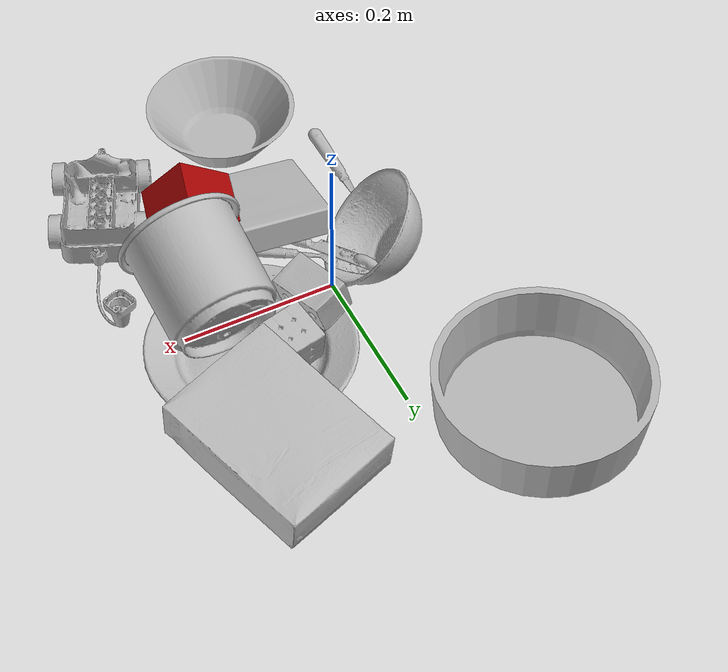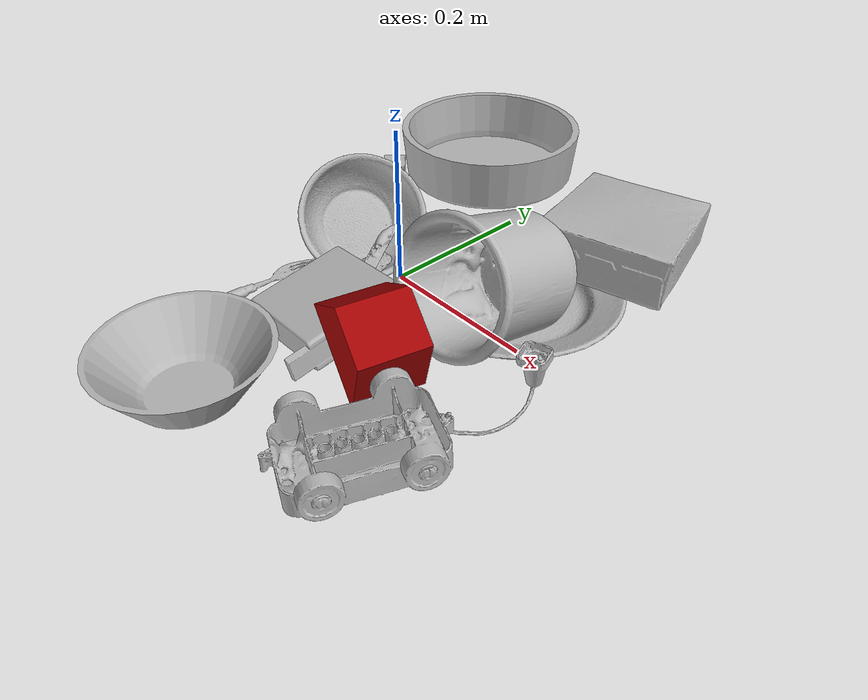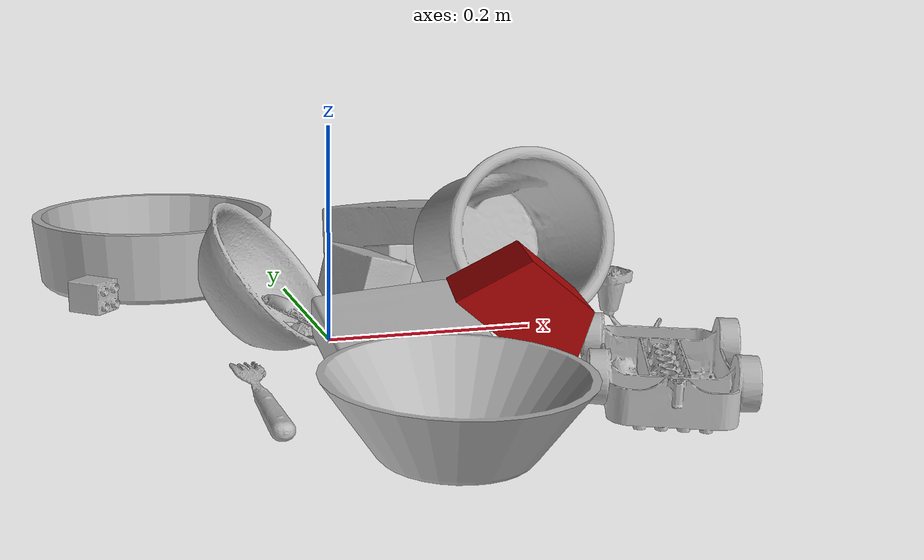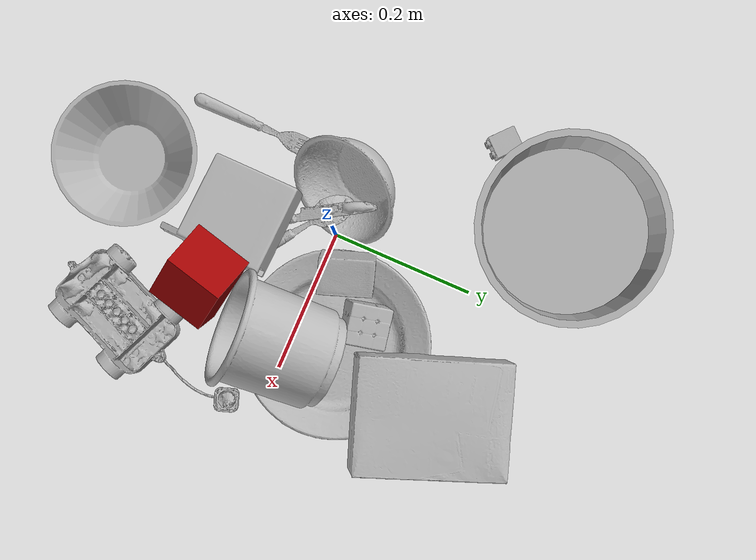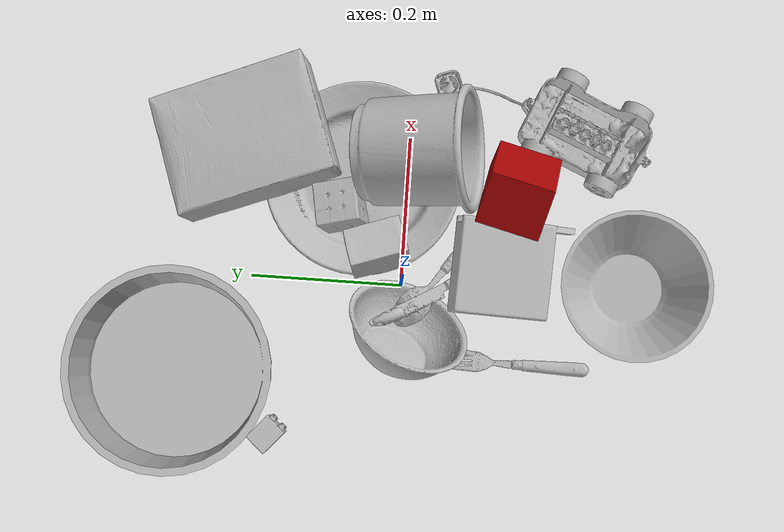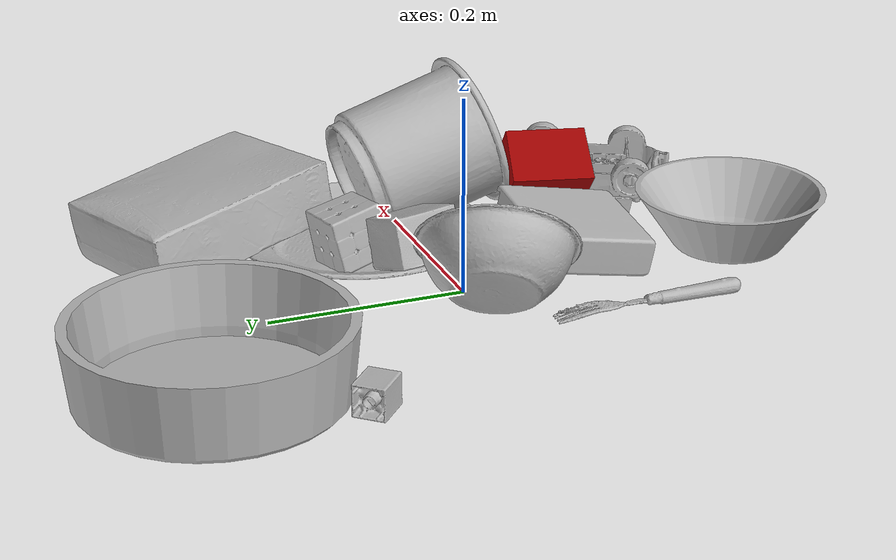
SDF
<sdf version="1.4">
  <world name="default">
    <light name="light1" type="point">
      <pose>0 0 1 0 0 0</pose>
      <diffuse>3 3 3 1</diffuse>
      <specular>3 3 3 1</specular>
    </light>
    <light name="light2" type="point">
      <pose>0 0.5 2 0 0 0</pose>
      <diffuse>1 1 1 1</diffuse>
      <specular>1 1 1 1</specular>
    </light>
    <light name="light3" type="point">
      <pose>0 0.5 2 0 0 0</pose>
      <diffuse>3 3 3 1</diffuse>
      <specular>3 3 3 1</specular>
    </light>
    <scene>
      <ambient>0.7 0.7 0.7</ambient>
    </scene>
    <model name="plate1">
      <link name="link_plate1">
        <collision name="default">
          <geometry>
            <mesh>
              <uri>model://pan_tefal/collision_meshes/collision.obj</uri>
              <scale>1.0 1.0 1.0</scale>
            </mesh>
          </geometry>
          <surface>
            <friction>
              <ode>
                <mu>0.5</mu>
                <mu2>0.5</mu2>
              </ode>
            </friction>
          <contact>
        <ode>
            <max_vel>0</max_vel>
            <min_depth>0.0001</min_depth>
            <kp>1e8</kp>
        </ode>
    </contact></surface>
        </collision>
        <visual name="default">
          <geometry>
            <mesh>
              <uri>model://pan_tefal/visual_meshes/visual.dae</uri>
              <scale>1.0 1.0 1.0</scale>
            </mesh>
          </geometry>
        </visual>
        <inertial>
          <mass>0.7575002908706665</mass>
          <pose>-0.00018002181604970247 3.278869189671241e-05 -0.00851493701338768 0.0008190213215647545 -0.0003301469994364688 -0.3318472895374236</pose>
          <inertia>
            <ixx>0.0052289874</ixx>
            <iyy>0.0052627004</iyy>
            <izz>0.009625561</izz>
            <ixy>0</ixy>
            <ixz>0</ixz>
            <iyz>0</iyz>
          </inertia>
        </inertial>
      </link>
      <pose>-0.1304413229227066 0.2881738245487213 0.03804999589920044 2.0851112926545404e-08 1.8092326676823667e-08 0.8821086328146249</pose>
    </model>
    <model name="plate2">
      <link name="link_plate2">
        <collision name="default">
          <geometry>
            <mesh>
              <uri>model://plate/collision_meshes/collision.obj</uri>
              <scale>1.0 1.0 1.0</scale>
            </mesh>
          </geometry>
          <surface>
            <friction>
              <ode>
                <mu>0.5</mu>
                <mu2>0.5</mu2>
              </ode>
            </friction>
          <contact>
        <ode>
            <max_vel>0</max_vel>
            <min_depth>0.0001</min_depth>
            <kp>1e8</kp>
        </ode>
    </contact></surface>
        </collision>
        <visual name="default">
          <geometry>
            <mesh>
              <uri>model://plate/visual_meshes/visual.dae</uri>
              <scale>1.0 1.0 1.0</scale>
            </mesh>
          </geometry>
        </visual>
        <inertial>
          <mass>0.24305373430252075</mass>
          <pose>-0.0006044657784514129 0.0002782582014333457 -0.0010561988456174731 0.0022187349237576767 -0.0032255124479001144 0.4526250186623527</pose>
          <inertia>
            <ixx>0.00113701</ixx>
            <iyy>0.0011261352</iyy>
            <izz>0.0022238225</izz>
            <ixy>0</ixy>
            <ixz>0</ixz>
            <iyz>0</iyz>
          </inertia>
        </inertial>
      </link>
      <pose>0.13806992769241333 0.06045273691415787 0.014425480738282204 -0.00813857621468201 0.002906715036090719 -0.08678406420772596</pose>
    </model>
    <model name="bowl1">
      <link name="link_bowl1">
        <collision name="default">
          <geometry>
            <mesh>
              <uri>model://bowl/collision_meshes/collision.obj</uri>
              <scale>1.0 1.0 1.0</scale>
            </mesh>
          </geometry>
          <surface>
            <friction>
              <ode>
                <mu>0.5</mu>
                <mu2>0.5</mu2>
              </ode>
            </friction>
          <contact>
        <ode>
            <max_vel>0</max_vel>
            <min_depth>0.0001</min_depth>
            <kp>1e8</kp>
        </ode>
    </contact></surface>
        </collision>
        <visual name="default">
          <geometry>
            <mesh>
              <uri>model://bowl/visual_meshes/visual.dae</uri>
              <scale>1.0 1.0 1.0</scale>
            </mesh>
          </geometry>
        </visual>
        <inertial>
          <mass>0.08028676360845566</mass>
          <pose>0.00020445045083761215 -0.0010302026057615876 -0.0008042661938816309 -0.015764207515600946 0.014546645366850262 0.7140316236369888</pose>
          <inertia>
            <ixx>0.00018442512</ixx>
            <iyy>0.00018030431</iyy>
            <izz>0.0003102665</izz>
            <ixy>0</ixy>
            <ixz>0</ixz>
            <iyz>0</iyz>
          </inertia>
        </inertial>
      </link>
      <pose>-0.07110293954610825 -0.004874961916357279 0.05390218645334244 0.6290564403027722 0.6496264163660396 0.4364270388387509</pose>
    </model>
    <model name="bowl2">
      <link name="link_bowl2">
        <collision name="default">
          <geometry>
            <mesh>
              <uri>model://bowl_a/collision_meshes/collision.obj</uri>
              <scale>1.0 1.0 1.0</scale>
            </mesh>
          </geometry>
          <surface>
            <friction>
              <ode>
                <mu>0.5</mu>
                <mu2>0.5</mu2>
              </ode>
            </friction>
          <contact>
        <ode>
            <max_vel>0</max_vel>
            <min_depth>0.0001</min_depth>
            <kp>1e8</kp>
        </ode>
    </contact></surface>
        </collision>
        <visual name="default">
          <geometry>
            <mesh>
              <uri>model://bowl_a/visual_meshes/visual.dae</uri>
              <scale>1.0 1.0 1.0</scale>
            </mesh>
          </geometry>
        </visual>
        <inertial>
          <mass>0.2016693353652954</mass>
          <pose>0.000278673687716946 4.731108856503852e-05 -0.0013765295734629035 -0.0009805301894988984 -0.0010938186520021772 -0.19123883274053055</pose>
          <inertia>
            <ixx>0.00057416206</ixx>
            <iyy>0.000577687</iyy>
            <izz>0.0010211696</izz>
            <ixy>0</ixy>
            <ixz>0</ixz>
            <iyz>0</iyz>
          </inertia>
        </inertial>
      </link>
      <pose>0.01576288789510727 -0.3011975586414337 0.030382931232452393 -1.3751448822608147e-06 -1.4991183352546134e-07 -2.5344381073162032</pose>
    </model>
    <model name="silverware1">
      <link name="link_silverware1">
        <collision name="default">
          <geometry>
            <mesh>
              <uri>model://spoon/collision_meshes/collision.obj</uri>
              <scale>1.0 1.0 1.0</scale>
            </mesh>
          </geometry>
          <surface>
            <friction>
              <ode>
                <mu>0.5</mu>
                <mu2>0.5</mu2>
              </ode>
            </friction>
          <contact>
        <ode>
            <max_vel>0</max_vel>
            <min_depth>0.0001</min_depth>
            <kp>1e8</kp>
        </ode>
    </contact></surface>
        </collision>
        <visual name="default">
          <geometry>
            <mesh>
              <uri>model://spoon/visual_meshes/visual.dae</uri>
              <scale>1.0 1.0 1.0</scale>
            </mesh>
          </geometry>
        </visual>
        <inertial>
          <mass>0.023438503965735435</mass>
          <pose>-0.005526317749172449 -0.0016034176805987954 -0.000727164966519922 0.03521671071703309 -0.03906584129558259 0.006150610048623938</pose>
          <inertia>
            <ixx>1.3036873e-06</ixx>
            <iyy>8.918272e-05</iyy>
            <izz>8.982564e-05</izz>
            <ixy>0</ixy>
            <ixz>0</ixz>
            <iyz>0</iyz>
          </inertia>
        </inertial>
      </link>
      <pose>0.025355197489261627 -0.0547603964805603 0.013312671333551407 2.965698022376732 -0.08779902583521307 2.4998010314278405</pose>
    </model>
    <model name="box1">
      <link name="link_box1">
        <collision name="default">
          <geometry>
            <mesh>
              <uri>model://cracker_box/collision_meshes/collision.obj</uri>
              <scale>1.0 1.0 1.0</scale>
            </mesh>
          </geometry>
          <surface>
            <friction>
              <ode>
                <mu>0.5</mu>
                <mu2>0.5</mu2>
              </ode>
            </friction>
          <contact>
        <ode>
            <max_vel>0</max_vel>
            <min_depth>0.0001</min_depth>
            <kp>1e8</kp>
        </ode>
    </contact></surface>
        </collision>
        <visual name="default">
          <geometry>
            <mesh>
              <uri>model://cracker_box/visual_meshes/visual.dae</uri>
              <scale>1.0 1.0 1.0</scale>
            </mesh>
          </geometry>
        </visual>
        <inertial>
          <mass>3.1733922958374023</mass>
          <pose>0.0009464119793847203 0.00025434247800149024 -0.0017029535956680775 -0.00031620768891544627 -0.011106485874643508 0.0025467963987026074</pose>
          <inertia>
            <ixx>0.008071693</ixx>
            <iyy>0.013327951</iyy>
            <izz>0.01902021</izz>
            <ixy>0</ixy>
            <ixz>0</ixz>
            <iyz>0</iyz>
          </inertia>
        </inertial>
      </link>
      <pose>0.17550118267536163 0.21550726890563965 0.051120057702064514 -3.0881127924852603 0.13255563763585837 1.9219815341023145</pose>
    </model>
    <model name="box2">
      <link name="link_box2">
        <collision name="default">
          <geometry>
            <mesh>
              <uri>model://rubiks_cube/collision_meshes/collision.obj</uri>
              <scale>1.0 1.0 1.0</scale>
            </mesh>
          </geometry>
          <surface>
            <friction>
              <ode>
                <mu>0.5</mu>
                <mu2>0.5</mu2>
              </ode>
            </friction>
          <contact>
        <ode>
            <max_vel>0</max_vel>
            <min_depth>0.0001</min_depth>
            <kp>1e8</kp>
        </ode>
    </contact></surface>
        </collision>
        <visual name="default">
          <geometry>
            <mesh>
              <uri>model://rubiks_cube/visual_meshes/visual.dae</uri>
              <scale>1.0 1.0 1.0</scale>
            </mesh>
          </geometry>
        </visual>
        <inertial>
          <mass>0.15184316039085388</mass>
          <pose>2.6721041649580002e-05 5.2569666877388954e-05 -7.264316536748083e-06 -0.0546734747968529 -0.09813870099197174 -0.03445517010401606</pose>
          <inertia>
            <ixx>8.390353e-05</ixx>
            <iyy>8.351226e-05</iyy>
            <izz>8.459882e-05</izz>
            <ixy>0</ixy>
            <ixz>0</ixz>
            <iyz>0</iyz>
          </inertia>
        </inertial>
      </link>
      <pose>0.0972253754734993 0.08655130863189697 0.03888913616538048 1.9953831413961798 -1.3830161483662053 1.360755631002848</pose>
    </model>
    <model name="cup1">
      <link name="link_cup1">
        <collision name="default">
          <geometry>
            <mesh>
              <uri>model://f_cups/collision_meshes/collision.obj</uri>
              <scale>2.0 2.0 2.0</scale>
            </mesh>
          </geometry>
          <surface>
            <friction>
              <ode>
                <mu>0.5</mu>
                <mu2>0.5</mu2>
              </ode>
            </friction>
          <contact>
        <ode>
            <max_vel>0</max_vel>
            <min_depth>0.0001</min_depth>
            <kp>1e8</kp>
        </ode>
    </contact></surface>
        </collision>
        <visual name="default">
          <geometry>
            <mesh>
              <uri>model://f_cups/visual_meshes/visual.dae</uri>
              <scale>2.0 2.0 2.0</scale>
            </mesh>
          </geometry>
        </visual>
        <inertial>
          <mass>0.31799542903900146</mass>
          <pose>-0.006342939101159573 -0.0012480145087465644 -0.00731107359752059 0.7862267301708457 -0.2607925342729672 -0.18237300859269054</pose>
          <inertia>
            <ixx>0.0011956966</ixx>
            <iyy>0.0012542997</iyy>
            <izz>0.001305761</izz>
            <ixy>0</ixy>
            <ixz>0</ixz>
            <iyz>0</iyz>
          </inertia>
        </inertial>
      </link>
      <pose>0.1662723273038864 -0.009107962250709534 0.0862898975610733 0.5593988824668692 1.2388876302655092 -0.9424532521855075</pose>
    </model>
    <model name="silverware2">
      <link name="link_silverware2">
        <collision name="default">
          <geometry>
            <mesh>
              <uri>model://knife/collision_meshes/collision.obj</uri>
              <scale>1.0 1.0 1.0</scale>
            </mesh>
          </geometry>
          <surface>
            <friction>
              <ode>
                <mu>0.5</mu>
                <mu2>0.5</mu2>
              </ode>
            </friction>
          <contact>
        <ode>
            <max_vel>0</max_vel>
            <min_depth>0.0001</min_depth>
            <kp>1e8</kp>
        </ode>
    </contact></surface>
        </collision>
        <visual name="default">
          <geometry>
            <mesh>
              <uri>model://knife/visual_meshes/visual.dae</uri>
              <scale>1.0 1.0 1.0</scale>
            </mesh>
          </geometry>
        </visual>
        <inertial>
          <mass>0.01713745854794979</mass>
          <pose>-0.02378525771200657 0.0015275123296305537 5.062021591584198e-05 0.07305753061421462 0.017248419855317693 -0.007409818535045194</pose>
          <inertia>
            <ixx>4.864306e-07</ixx>
            <iyy>6.583934e-05</iyy>
            <izz>6.5996e-05</izz>
            <ixy>0</ixy>
            <ixz>0</ixz>
            <iyz>0</iyz>
          </inertia>
        </inertial>
      </link>
      <pose>-0.003306569531559944 -0.05540419742465019 0.02145186811685562 -3.078823833787762 -0.13798101537664803 2.1079798161175303</pose>
    </model>
    <model name="silverware3">
      <link name="link_silverware3">
        <collision name="default">
          <geometry>
            <mesh>
              <uri>model://fork/collision_meshes/collision.obj</uri>
              <scale>1.0 1.0 1.0</scale>
            </mesh>
          </geometry>
          <surface>
            <friction>
              <ode>
                <mu>0.5</mu>
                <mu2>0.5</mu2>
              </ode>
            </friction>
          <contact>
        <ode>
            <max_vel>0</max_vel>
            <min_depth>0.0001</min_depth>
            <kp>1e8</kp>
        </ode>
    </contact></surface>
        </collision>
        <visual name="default">
          <geometry>
            <mesh>
              <uri>model://fork/visual_meshes/visual.dae</uri>
              <scale>1.0 1.0 1.0</scale>
            </mesh>
          </geometry>
        </visual>
        <inertial>
          <mass>0.012323527596890926</mass>
          <pose>-0.029570043087005615 0.00046588233090005815 0.0003218861238565296 -0.013551145261099908 -0.01097783717976447 0.01445390335153306</pose>
          <inertia>
            <ixx>4.3200933e-07</ixx>
            <iyy>3.2173175e-05</iyy>
            <izz>3.236641e-05</izz>
            <ixy>0</ixy>
            <ixz>0</ixz>
            <iyz>0</iyz>
          </inertia>
        </inertial>
      </link>
      <pose>-0.09511915594339371 -0.155507892370224 0.007446605712175369 -3.06349948127601 0.0028359491473744242 1.5600399604160813</pose>
    </model>
    <model name="toy1">
      <link name="link_toy1">
        <collision name="default">
          <geometry>
            <mesh>
              <uri>model://foam_brick/collision_meshes/collision.obj</uri>
              <scale>1.0 1.0 1.0</scale>
            </mesh>
          </geometry>
          <surface>
            <friction>
              <ode>
                <mu>0.5</mu>
                <mu2>0.5</mu2>
              </ode>
            </friction>
          <contact>
        <ode>
            <max_vel>0</max_vel>
            <min_depth>0.0001</min_depth>
            <kp>1e8</kp>
        </ode>
    </contact></surface>
        </collision>
        <visual name="default">
          <geometry>
            <mesh>
              <uri>model://foam_brick/visual_meshes/visual.dae</uri>
              <scale>1.0 1.0 1.0</scale>
            </mesh>
          </geometry>
        </visual>
        <inertial>
          <mass>0.22379855811595917</mass>
          <pose>-0.00025224717683158815 0.0003458436403889209 -0.0002532101352699101 -0.29401565582258504 0.017274431815567964 -0.0007449878256007176</pose>
          <inertia>
            <ixx>9.775939e-05</ixx>
            <iyy>0.00015607789</iyy>
            <izz>0.00015806146</izz>
            <ixy>0</ixy>
            <ixz>0</ixz>
            <iyz>0</iyz>
          </inertia>
        </inertial>
      </link>
      <pose>0.043927982449531555 0.03597500920295715 0.04768749326467514 1.8545124825950545 -0.027746539456186853 1.9135848162643885</pose>
    </model>
    <model name="toy2">
      <link name="link_toy2">
        <collision name="default">
          <geometry>
            <mesh>
              <uri>model://g_lego_duplo/collision_meshes/collision.obj</uri>
              <scale>1.0 1.0 1.0</scale>
            </mesh>
          </geometry>
          <surface>
            <friction>
              <ode>
                <mu>0.5</mu>
                <mu2>0.5</mu2>
              </ode>
            </friction>
          <contact>
        <ode>
            <max_vel>0</max_vel>
            <min_depth>0.0001</min_depth>
            <kp>1e8</kp>
        </ode>
    </contact></surface>
        </collision>
        <visual name="default">
          <geometry>
            <mesh>
              <uri>model://g_lego_duplo/visual_meshes/visual.dae</uri>
              <scale>1.0 1.0 1.0</scale>
            </mesh>
          </geometry>
        </visual>
        <inertial>
          <mass>0.5124852657318115</mass>
          <pose>-0.05004769191145897 0.0017554633086547256 0.003880675183609128 0.010962987419080987 0.0381082502855883 -0.09653031806986456</pose>
          <inertia>
            <ixx>0.0007425969</ixx>
            <iyy>0.0022451086</iyy>
            <izz>0.0028087152</izz>
            <ixy>0</ixy>
            <ixz>0</ixz>
            <iyz>0</iyz>
          </inertia>
        </inertial>
      </link>
      <pose>0.23618458211421967 -0.17422369122505188 0.02762901969254017 -3.1415909014915693 -0.030279750638657524 1.1640252533690854</pose>
    </model>
    <model name="toy3">
      <link name="link_toy3">
        <collision name="default">
          <geometry>
            <mesh>
              <uri>model://nine_hole_peg_test/collision_meshes/collision.obj</uri>
              <scale>1.0 1.0 1.0</scale>
            </mesh>
          </geometry>
          <surface>
            <friction>
              <ode>
                <mu>0.5</mu>
                <mu2>0.5</mu2>
              </ode>
            </friction>
          <contact>
        <ode>
            <max_vel>0</max_vel>
            <min_depth>0.0001</min_depth>
            <kp>1e8</kp>
        </ode>
    </contact></surface>
        </collision>
        <visual name="default">
          <geometry>
            <mesh>
              <uri>model://nine_hole_peg_test/visual_meshes/visual.dae</uri>
              <scale>1.0 1.0 1.0</scale>
            </mesh>
          </geometry>
        </visual>
        <inertial>
          <mass>0.8364987969398499</mass>
          <pose>-0.004617386497557163 -0.009647614322602749 2.6460691515239887e-05 -0.0014666793226822761 0.000719418076932787 -0.634241593386854</pose>
          <inertia>
            <ixx>0.0013080036</ixx>
            <iyy>0.0012212693</iyy>
            <izz>0.0022920077</izz>
            <ixy>0</ixy>
            <ixz>0</ixz>
            <iyz>0</iyz>
          </inertia>
        </inertial>
      </link>
      <pose>0.033926092088222504 -0.13996219635009766 0.0342683382332325 -2.961848729644432 -0.08234872627921092 -0.04483644917627764</pose>
    </model>
    <model name="toy4">
      <link name="link_toy4">
        <collision name="default">
          <geometry>
            <mesh>
              <uri>model://b_lego_duplo/collision_meshes/collision.obj</uri>
              <scale>1.0 1.0 1.0</scale>
            </mesh>
          </geometry>
          <surface>
            <friction>
              <ode>
                <mu>0.5</mu>
                <mu2>0.5</mu2>
              </ode>
            </friction>
          <contact>
        <ode>
            <max_vel>0</max_vel>
            <min_depth>0.0001</min_depth>
            <kp>1e8</kp>
        </ode>
    </contact></surface>
        </collision>
        <visual name="default">
          <geometry>
            <mesh>
              <uri>model://b_lego_duplo/visual_meshes/visual.dae</uri>
              <scale>1.0 1.0 1.0</scale>
            </mesh>
          </geometry>
        </visual>
        <inertial>
          <mass>0.0316849946975708</mass>
          <pose>-0.00011053055641241372 -9.15226701181382e-06 0.0019294292433187366 -0.03749472548528336 -0.026354304906346077 0.4518915128408031</pose>
          <inertia>
            <ixx>6.4845735e-06</ixx>
            <iyy>6.5281647e-06</iyy>
            <izz>5.777544e-06</izz>
            <ixy>0</ixy>
            <ixz>0</ixz>
            <iyz>0</iyz>
          </inertia>
        </inertial>
      </link>
      <pose>-0.20472858846187592 0.16111579537391663 0.016180776059627533 0.04212723104471455 -1.5623855993354052 2.3725990387125444</pose>
    </model>
    <model name="toy5">
      <link name="link_toy5">
        <collision name="default">
          <geometry>
            <mesh>
              <uri>model://prism/collision_meshes/collision.obj</uri>
              <scale>1.0 1.0 1.0</scale>
            </mesh>
          </geometry>
          <surface>
            <friction>
              <ode>
                <mu>0.5</mu>
                <mu2>0.5</mu2>
              </ode>
            </friction>
          <contact>
        <ode>
            <max_vel>0</max_vel>
            <min_depth>0.0001</min_depth>
            <kp>1e8</kp>
        </ode>
    </contact></surface>
        </collision>
        <visual name="default">
          <geometry>
            <mesh>
              <uri>model://prism/visual_meshes/visual.dae</uri>
              <scale>1.0 1.0 1.0</scale>
            </mesh>
          </geometry>
        </visual>
        <inertial>
          <mass>0.34586653113365173</mass>
          <pose>-9.853597293840721e-05 -4.96157269935793e-07 -0.0033869100734591484 0.0 0.006559180766136186 0.0</pose>
          <inertia>
            <ixx>0.00031214024</ixx>
            <iyy>0.00037722557</iyy>
            <izz>0.00046205617</izz>
            <ixy>0</ixy>
            <ixz>0</ixz>
            <iyz>0</iyz>
          </inertia>
        </inertial>
      </link>
      <pose>0.1367078572511673 -0.14450988173484802 0.06206870079040527 -0.00012700628660900423 -0.686832626242936 2.8961462319611524</pose>
    </model>
  <physics type="ode">
      <max_contacts>50</max_contacts>
      <ode>
        <solver>
          <type>quick</type>
          <iters>75</iters>
        </solver>
        <constraints>
          <contact_max_correcting_vel>0</contact_max_correcting_vel>
          <contact_surface_layer>0</contact_surface_layer>
        </constraints>
      </ode>
    </physics></world>
</sdf>
